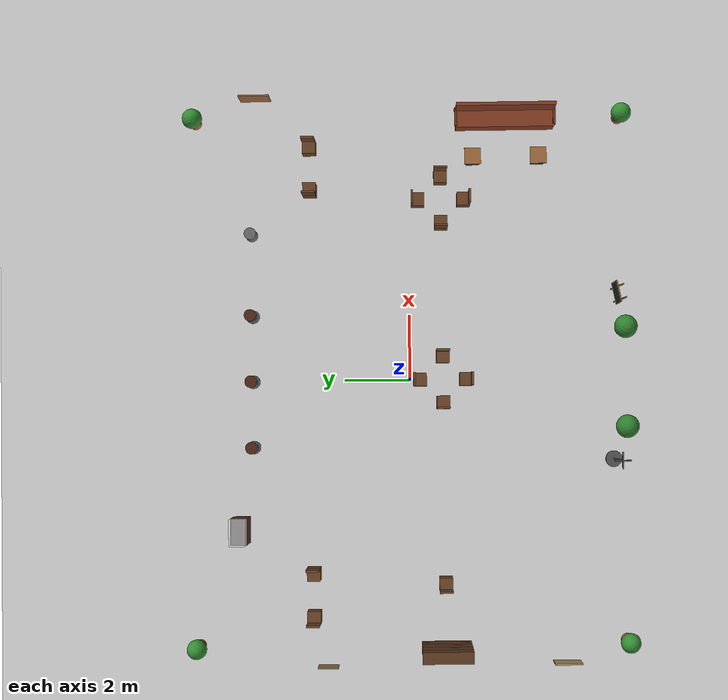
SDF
<sdf version="1.6">
 <world name="cafe_world">
  <include><uri>model://sun</uri></include>
  <include><uri>model://ground_plane</uri></include>
  <model name="chair_3_w">
   <static>true</static>
   <link name="link">
    <pose>-6.2 -1.0 0 0 0 -1.5708</pose>
    <collision name="seat">
     <pose>0 0 0.24 0 0 0</pose>
     <geometry><box><size>0.4 0.4 0.48</size></box></geometry>
    </collision>
    <visual name="seat_v">
     <pose>0 0 0.24 0 0 0</pose>
     <geometry><box><size>0.4 0.4 0.48</size></box></geometry>
     <material><ambient>0.35 0.22 0.12 1</ambient><diffuse>0.4 0.25 0.14 1</diffuse></material>
    </visual>
    <collision name="back">
     <pose>0 -0.17 0.74 0 0 0</pose>
     <geometry><box><size>0.4 0.06 0.54</size></box></geometry>
    </collision>
    <visual name="back_v">
     <pose>0 -0.17 0.74 0 0 0</pose>
     <geometry><box><size>0.4 0.06 0.54</size></box></geometry>
     <material><ambient>0.35 0.22 0.12 1</ambient><diffuse>0.4 0.25 0.14 1</diffuse></material>
    </visual>
   </link>
  </model>
  <model name="chair_4_n">
   <static>true</static>
   <link name="link">
    <pose>0 -0.3 0 0 0 3.1416</pose>
    <collision name="seat">
     <pose>0 0 0.24 0 0 0</pose>
     <geometry><box><size>0.4 0.4 0.48</size></box></geometry>
    </collision>
    <visual name="seat_v">
     <pose>0 0 0.24 0 0 0</pose>
     <geometry><box><size>0.4 0.4 0.48</size></box></geometry>
     <material><ambient>0.35 0.22 0.12 1</ambient><diffuse>0.4 0.25 0.14 1</diffuse></material>
    </visual>
    <collision name="back">
     <pose>0 -0.17 0.74 0 0 0</pose>
     <geometry><box><size>0.4 0.06 0.54</size></box></geometry>
    </collision>
    <visual name="back_v">
     <pose>0 -0.17 0.74 0 0 0</pose>
     <geometry><box><size>0.4 0.06 0.54</size></box></geometry>
     <material><ambient>0.35 0.22 0.12 1</ambient><diffuse>0.4 0.25 0.14 1</diffuse></material>
    </visual>
   </link>
  </model>
  <model name="chair_4_s">
   <static>true</static>
   <link name="link">
    <pose>0 -1.7 0 0 0 0</pose>
    <collision name="seat">
     <pose>0 0 0.24 0 0 0</pose>
     <geometry><box><size>0.4 0.4 0.48</size></box></geometry>
    </collision>
    <visual name="seat_v">
     <pose>0 0 0.24 0 0 0</pose>
     <geometry><box><size>0.4 0.4 0.48</size></box></geometry>
     <material><ambient>0.35 0.22 0.12 1</ambient><diffuse>0.4 0.25 0.14 1</diffuse></material>
    </visual>
    <collision name="back">
     <pose>0 -0.17 0.74 0 0 0</pose>
     <geometry><box><size>0.4 0.06 0.54</size></box></geometry>
    </collision>
    <visual name="back_v">
     <pose>0 -0.17 0.74 0 0 0</pose>
     <geometry><box><size>0.4 0.06 0.54</size></box></geometry>
     <material><ambient>0.35 0.22 0.12 1</ambient><diffuse>0.4 0.25 0.14 1</diffuse></material>
    </visual>
   </link>
  </model>
  <model name="chair_4_e">
   <static>true</static>
   <link name="link">
    <pose>0.7 -1.0 0 0 0 1.5708</pose>
    <collision name="seat">
     <pose>0 0 0.24 0 0 0</pose>
     <geometry><box><size>0.4 0.4 0.48</size></box></geometry>
    </collision>
    <visual name="seat_v">
     <pose>0 0 0.24 0 0 0</pose>
     <geometry><box><size>0.4 0.4 0.48</size></box></geometry>
     <material><ambient>0.35 0.22 0.12 1</ambient><diffuse>0.4 0.25 0.14 1</diffuse></material>
    </visual>
    <collision name="back">
     <pose>0 -0.17 0.74 0 0 0</pose>
     <geometry><box><size>0.4 0.06 0.54</size></box></geometry>
    </collision>
    <visual name="back_v">
     <pose>0 -0.17 0.74 0 0 0</pose>
     <geometry><box><size>0.4 0.06 0.54</size></box></geometry>
     <material><ambient>0.35 0.22 0.12 1</ambient><diffuse>0.4 0.25 0.14 1</diffuse></material>
    </visual>
   </link>
  </model>
  <model name="chair_4_w">
   <static>true</static>
   <link name="link">
    <pose>-0.7 -1.0 0 0 0 -1.5708</pose>
    <collision name="seat">
     <pose>0 0 0.24 0 0 0</pose>
     <geometry><box><size>0.4 0.4 0.48</size></box></geometry>
    </collision>
    <visual name="seat_v">
     <pose>0 0 0.24 0 0 0</pose>
     <geometry><box><size>0.4 0.4 0.48</size></box></geometry>
     <material><ambient>0.35 0.22 0.12 1</ambient><diffuse>0.4 0.25 0.14 1</diffuse></material>
    </visual>
    <collision name="back">
     <pose>0 -0.17 0.74 0 0 0</pose>
     <geometry><box><size>0.4 0.06 0.54</size></box></geometry>
    </collision>
    <visual name="back_v">
     <pose>0 -0.17 0.74 0 0 0</pose>
     <geometry><box><size>0.4 0.06 0.54</size></box></geometry>
     <material><ambient>0.35 0.22 0.12 1</ambient><diffuse>0.4 0.25 0.14 1</diffuse></material>
    </visual>
   </link>
  </model>
  <model name="chair_5_n">
   <static>true</static>
   <link name="link">
    <pose>5.5 -0.3 0 0 0 3.1416</pose>
    <collision name="seat">
     <pose>0 0 0.24 0 0 0</pose>
     <geometry><box><size>0.4 0.4 0.48</size></box></geometry>
    </collision>
    <visual name="seat_v">
     <pose>0 0 0.24 0 0 0</pose>
     <geometry><box><size>0.4 0.4 0.48</size></box></geometry>
     <material><ambient>0.35 0.22 0.12 1</ambient><diffuse>0.4 0.25 0.14 1</diffuse></material>
    </visual>
    <collision name="back">
     <pose>0 -0.17 0.74 0 0 0</pose>
     <geometry><box><size>0.4 0.06 0.54</size></box></geometry>
    </collision>
    <visual name="back_v">
     <pose>0 -0.17 0.74 0 0 0</pose>
     <geometry><box><size>0.4 0.06 0.54</size></box></geometry>
     <material><ambient>0.35 0.22 0.12 1</ambient><diffuse>0.4 0.25 0.14 1</diffuse></material>
    </visual>
   </link>
  </model>
  <model name="chair_5_s">
   <static>true</static>
   <link name="link">
    <pose>5.5 -1.7 0 0 0 0</pose>
    <collision name="seat">
     <pose>0 0 0.24 0 0 0</pose>
     <geometry><box><size>0.4 0.4 0.48</size></box></geometry>
    </collision>
    <visual name="seat_v">
     <pose>0 0 0.24 0 0 0</pose>
     <geometry><box><size>0.4 0.4 0.48</size></box></geometry>
     <material><ambient>0.35 0.22 0.12 1</ambient><diffuse>0.4 0.25 0.14 1</diffuse></material>
    </visual>
    <collision name="back">
     <pose>0 -0.17 0.74 0 0 0</pose>
     <geometry><box><size>0.4 0.06 0.54</size></box></geometry>
    </collision>
    <visual name="back_v">
     <pose>0 -0.17 0.74 0 0 0</pose>
     <geometry><box><size>0.4 0.06 0.54</size></box></geometry>
     <material><ambient>0.35 0.22 0.12 1</ambient><diffuse>0.4 0.25 0.14 1</diffuse></material>
    </visual>
   </link>
  </model>
  <model name="chair_5_e">
   <static>true</static>
   <link name="link">
    <pose>6.2 -1.0 0 0 0 1.5708</pose>
    <collision name="seat">
     <pose>0 0 0.24 0 0 0</pose>
     <geometry><box><size>0.4 0.4 0.48</size></box></geometry>
    </collision>
    <visual name="seat_v">
     <pose>0 0 0.24 0 0 0</pose>
     <geometry><box><size>0.4 0.4 0.48</size></box></geometry>
     <material><ambient>0.35 0.22 0.12 1</ambient><diffuse>0.4 0.25 0.14 1</diffuse></material>
    </visual>
    <collision name="back">
     <pose>0 -0.17 0.74 0 0 0</pose>
     <geometry><box><size>0.4 0.06 0.54</size></box></geometry>
    </collision>
    <visual name="back_v">
     <pose>0 -0.17 0.74 0 0 0</pose>
     <geometry><box><size>0.4 0.06 0.54</size></box></geometry>
     <material><ambient>0.35 0.22 0.12 1</ambient><diffuse>0.4 0.25 0.14 1</diffuse></material>
    </visual>
   </link>
  </model>
  <model name="chair_5_w">
   <static>true</static>
   <link name="link">
    <pose>4.8 -1.0 0 0 0 -1.5708</pose>
    <collision name="seat">
     <pose>0 0 0.24 0 0 0</pose>
     <geometry><box><size>0.4 0.4 0.48</size></box></geometry>
    </collision>
    <visual name="seat_v">
     <pose>0 0 0.24 0 0 0</pose>
     <geometry><box><size>0.4 0.4 0.48</size></box></geometry>
     <material><ambient>0.35 0.22 0.12 1</ambient><diffuse>0.4 0.25 0.14 1</diffuse></material>
    </visual>
    <collision name="back">
     <pose>0 -0.17 0.74 0 0 0</pose>
     <geometry><box><size>0.4 0.06 0.54</size></box></geometry>
    </collision>
    <visual name="back_v">
     <pose>0 -0.17 0.74 0 0 0</pose>
     <geometry><box><size>0.4 0.06 0.54</size></box></geometry>
     <material><ambient>0.35 0.22 0.12 1</ambient><diffuse>0.4 0.25 0.14 1</diffuse></material>
    </visual>
   </link>
  </model>
  <model name="chair_6_e">
   <static>true</static>
   <link name="link">
    <pose>-5.85 3.0 0 0 0 1.5708</pose>
    <collision name="seat">
     <pose>0 0 0.24 0 0 0</pose>
     <geometry><box><size>0.4 0.4 0.48</size></box></geometry>
    </collision>
    <visual name="seat_v">
     <pose>0 0 0.24 0 0 0</pose>
     <geometry><box><size>0.4 0.4 0.48</size></box></geometry>
     <material><ambient>0.35 0.22 0.12 1</ambient><diffuse>0.4 0.25 0.14 1</diffuse></material>
    </visual>
    <collision name="back">
     <pose>0 -0.17 0.74 0 0 0</pose>
     <geometry><box><size>0.4 0.06 0.54</size></box></geometry>
    </collision>
    <visual name="back_v">
     <pose>0 -0.17 0.74 0 0 0</pose>
     <geometry><box><size>0.4 0.06 0.54</size></box></geometry>
     <material><ambient>0.35 0.22 0.12 1</ambient><diffuse>0.4 0.25 0.14 1</diffuse></material>
    </visual>
   </link>
  </model>
  <model name="chair_6_w">
   <static>true</static>
   <link name="link">
    <pose>-7.15 3.0 0 0 0 -1.5708</pose>
    <collision name="seat">
     <pose>0 0 0.24 0 0 0</pose>
     <geometry><box><size>0.4 0.4 0.48</size></box></geometry>
    </collision>
    <visual name="seat_v">
     <pose>0 0 0.24 0 0 0</pose>
     <geometry><box><size>0.4 0.4 0.48</size></box></geometry>
     <material><ambient>0.35 0.22 0.12 1</ambient><diffuse>0.4 0.25 0.14 1</diffuse></material>
    </visual>
    <collision name="back">
     <pose>0 -0.17 0.74 0 0 0</pose>
     <geometry><box><size>0.4 0.06 0.54</size></box></geometry>
    </collision>
    <visual name="back_v">
     <pose>0 -0.17 0.74 0 0 0</pose>
     <geometry><box><size>0.4 0.06 0.54</size></box></geometry>
     <material><ambient>0.35 0.22 0.12 1</ambient><diffuse>0.4 0.25 0.14 1</diffuse></material>
    </visual>
   </link>
  </model>
  <model name="chair_7_e">
   <static>true</static>
   <link name="link">
    <pose>7.15 3.0 0 0 0 1.5708</pose>
    <collision name="seat">
     <pose>0 0 0.24 0 0 0</pose>
     <geometry><box><size>0.4 0.4 0.48</size></box></geometry>
    </collision>
    <visual name="seat_v">
     <pose>0 0 0.24 0 0 0</pose>
     <geometry><box><size>0.4 0.4 0.48</size></box></geometry>
     <material><ambient>0.35 0.22 0.12 1</ambient><diffuse>0.4 0.25 0.14 1</diffuse></material>
    </visual>
    <collision name="back">
     <pose>0 -0.17 0.74 0 0 0</pose>
     <geometry><box><size>0.4 0.06 0.54</size></box></geometry>
    </collision>
    <visual name="back_v">
     <pose>0 -0.17 0.74 0 0 0</pose>
     <geometry><box><size>0.4 0.06 0.54</size></box></geometry>
     <material><ambient>0.35 0.22 0.12 1</ambient><diffuse>0.4 0.25 0.14 1</diffuse></material>
    </visual>
   </link>
  </model>
  <model name="chair_7_w">
   <static>true</static>
   <link name="link">
    <pose>5.85 3.0 0 0 0 -1.5708</pose>
    <collision name="seat">
     <pose>0 0 0.24 0 0 0</pose>
     <geometry><box><size>0.4 0.4 0.48</size></box></geometry>
    </collision>
    <visual name="seat_v">
     <pose>0 0 0.24 0 0 0</pose>
     <geometry><box><size>0.4 0.4 0.48</size></box></geometry>
     <material><ambient>0.35 0.22 0.12 1</ambient><diffuse>0.4 0.25 0.14 1</diffuse></material>
    </visual>
    <collision name="back">
     <pose>0 -0.17 0.74 0 0 0</pose>
     <geometry><box><size>0.4 0.06 0.54</size></box></geometry>
    </collision>
    <visual name="back_v">
     <pose>0 -0.17 0.74 0 0 0</pose>
     <geometry><box><size>0.4 0.06 0.54</size></box></geometry>
     <material><ambient>0.35 0.22 0.12 1</ambient><diffuse>0.4 0.25 0.14 1</diffuse></material>
    </visual>
   </link>
  </model>
  <model name="stool_0">
   <static>true</static>
   <link name="link">
    <pose>-2 4.8 0 0 0 0</pose>
    <collision name="seat">
     <pose>0 0 0.75 0 0 0</pose>
     <geometry><cylinder><radius>0.18</radius><length>0.06</length></cylinder></geometry>
    </collision>
    <visual name="seat_v">
     <pose>0 0 0.75 0 0 0</pose>
     <geometry><cylinder><radius>0.18</radius><length>0.06</length></cylinder></geometry>
     <material><ambient>0.25 0.12 0.06 1</ambient><diffuse>0.3 0.15 0.08 1</diffuse></material>
    </visual>
    <collision name="leg">
     <pose>0 0 0.36 0 0 0</pose>
     <geometry><cylinder><radius>0.03</radius><length>0.72</length></cylinder></geometry>
    </collision>
    <visual name="leg_v">
     <pose>0 0 0.36 0 0 0</pose>
     <geometry><cylinder><radius>0.03</radius><length>0.72</length></cylinder></geometry>
     <material><ambient>0.3 0.3 0.3 1</ambient></material>
    </visual>
    <collision name="foot">
     <pose>0 0 0.3 0 0 0</pose>
     <geometry><cylinder><radius>0.15</radius><length>0.03</length></cylinder></geometry>
    </collision>
    <visual name="foot_v">
     <pose>0 0 0.3 0 0 0</pose>
     <geometry><cylinder><radius>0.15</radius><length>0.03</length></cylinder></geometry>
     <material><ambient>0.3 0.3 0.3 1</ambient></material>
    </visual>
    <collision name="base">
     <pose>0 0 0.02 0 0 0</pose>
     <geometry><cylinder><radius>0.2</radius><length>0.04</length></cylinder></geometry>
    </collision>
    <visual name="base_v">
     <pose>0 0 0.02 0 0 0</pose>
     <geometry><cylinder><radius>0.2</radius><length>0.04</length></cylinder></geometry>
     <material><ambient>0.3 0.3 0.3 1</ambient></material>
    </visual>
   </link>
  </model>
  <model name="stool_1">
   <static>true</static>
   <link name="link">
    <pose>0 4.8 0 0 0 0</pose>
    <collision name="seat">
     <pose>0 0 0.75 0 0 0</pose>
     <geometry><cylinder><radius>0.18</radius><length>0.06</length></cylinder></geometry>
    </collision>
    <visual name="seat_v">
     <pose>0 0 0.75 0 0 0</pose>
     <geometry><cylinder><radius>0.18</radius><length>0.06</length></cylinder></geometry>
     <material><ambient>0.25 0.12 0.06 1</ambient><diffuse>0.3 0.15 0.08 1</diffuse></material>
    </visual>
    <collision name="leg">
     <pose>0 0 0.36 0 0 0</pose>
     <geometry><cylinder><radius>0.03</radius><length>0.72</length></cylinder></geometry>
    </collision>
    <visual name="leg_v">
     <pose>0 0 0.36 0 0 0</pose>
     <geometry><cylinder><radius>0.03</radius><length>0.72</length></cylinder></geometry>
     <material><ambient>0.3 0.3 0.3 1</ambient></material>
    </visual>
    <collision name="foot">
     <pose>0 0 0.3 0 0 0</pose>
     <geometry><cylinder><radius>0.15</radius><length>0.03</length></cylinder></geometry>
    </collision>
    <visual name="foot_v">
     <pose>0 0 0.3 0 0 0</pose>
     <geometry><cylinder><radius>0.15</radius><length>0.03</length></cylinder></geometry>
     <material><ambient>0.3 0.3 0.3 1</ambient></material>
    </visual>
    <collision name="base">
     <pose>0 0 0.02 0 0 0</pose>
     <geometry><cylinder><radius>0.2</radius><length>0.04</length></cylinder></geometry>
    </collision>
    <visual name="base_v">
     <pose>0 0 0.02 0 0 0</pose>
     <geometry><cylinder><radius>0.2</radius><length>0.04</length></cylinder></geometry>
     <material><ambient>0.3 0.3 0.3 1</ambient></material>
    </visual>
   </link>
  </model>
  <model name="stool_2">
   <static>true</static>
   <link name="link">
    <pose>2 4.8 0 0 0 0</pose>
    <collision name="seat">
     <pose>0 0 0.75 0 0 0</pose>
     <geometry><cylinder><radius>0.18</radius><length>0.06</length></cylinder></geometry>
    </collision>
    <visual name="seat_v">
     <pose>0 0 0.75 0 0 0</pose>
     <geometry><cylinder><radius>0.18</radius><length>0.06</length></cylinder></geometry>
     <material><ambient>0.25 0.12 0.06 1</ambient><diffuse>0.3 0.15 0.08 1</diffuse></material>
    </visual>
    <collision name="leg">
     <pose>0 0 0.36 0 0 0</pose>
     <geometry><cylinder><radius>0.03</radius><length>0.72</length></cylinder></geometry>
    </collision>
    <visual name="leg_v">
     <pose>0 0 0.36 0 0 0</pose>
     <geometry><cylinder><radius>0.03</radius><length>0.72</length></cylinder></geometry>
     <material><ambient>0.3 0.3 0.3 1</ambient></material>
    </visual>
    <collision name="foot">
     <pose>0 0 0.3 0 0 0</pose>
     <geometry><cylinder><radius>0.15</radius><length>0.03</length></cylinder></geometry>
    </collision>
    <visual name="foot_v">
     <pose>0 0 0.3 0 0 0</pose>
     <geometry><cylinder><radius>0.15</radius><length>0.03</length></cylinder></geometry>
     <material><ambient>0.3 0.3 0.3 1</ambient></material>
    </visual>
    <collision name="base">
     <pose>0 0 0.02 0 0 0</pose>
     <geometry><cylinder><radius>0.2</radius><length>0.04</length></cylinder></geometry>
    </collision>
    <visual name="base_v">
     <pose>0 0 0.02 0 0 0</pose>
     <geometry><cylinder><radius>0.2</radius><length>0.04</length></cylinder></geometry>
     <material><ambient>0.3 0.3 0.3 1</ambient></material>
    </visual>
   </link>
  </model>
  <model name="plant_0">
   <static>true</static>
   <link name="link">
    <pose>-8 -6.5 0 0 0 0</pose>
    <collision name="pot">
     <pose>0 0 0.2 0 0 0</pose>
     <geometry><cylinder><radius>0.18</radius><length>0.4</length></cylinder></geometry>
    </collision>
    <visual name="pot_v">
     <pose>0 0 0.2 0 0 0</pose>
     <geometry><cylinder><radius>0.18</radius><length>0.4</length></cylinder></geometry>
     <material><ambient>0.7 0.35 0.18 1</ambient><diffuse>0.75 0.4 0.2 1</diffuse></material>
    </visual>
    <collision name="foliage">
     <pose>0 0 0.7 0 0 0</pose>
     <geometry><sphere><radius>0.3</radius></sphere></geometry>
    </collision>
    <visual name="foliage_v">
     <pose>0 0 0.7 0 0 0</pose>
     <geometry><sphere><radius>0.3</radius></sphere></geometry>
     <material><ambient>0.15 0.5 0.15 1</ambient><diffuse>0.2 0.55 0.2 1</diffuse></material>
    </visual>
   </link>
  </model>
  <model name="plant_1">
   <static>true</static>
   <link name="link">
    <pose>8 -6.5 0 0 0 0</pose>
    <collision name="pot">
     <pose>0 0 0.2 0 0 0</pose>
     <geometry><cylinder><radius>0.18</radius><length>0.4</length></cylinder></geometry>
    </collision>
    <visual name="pot_v">
     <pose>0 0 0.2 0 0 0</pose>
     <geometry><cylinder><radius>0.18</radius><length>0.4</length></cylinder></geometry>
     <material><ambient>0.7 0.35 0.18 1</ambient><diffuse>0.75 0.4 0.2 1</diffuse></material>
    </visual>
    <collision name="foliage">
     <pose>0 0 0.7 0 0 0</pose>
     <geometry><sphere><radius>0.3</radius></sphere></geometry>
    </collision>
    <visual name="foliage_v">
     <pose>0 0 0.7 0 0 0</pose>
     <geometry><sphere><radius>0.3</radius></sphere></geometry>
     <material><ambient>0.15 0.5 0.15 1</ambient><diffuse>0.2 0.55 0.2 1</diffuse></material>
    </visual>
   </link>
  </model>
  <model name="plant_2">
   <static>true</static>
   <link name="link">
    <pose>-8 6.5 0 0 0 0</pose>
    <collision name="pot">
     <pose>0 0 0.2 0 0 0</pose>
     <geometry><cylinder><radius>0.18</radius><length>0.4</length></cylinder></geometry>
    </collision>
    <visual name="pot_v">
     <pose>0 0 0.2 0 0 0</pose>
     <geometry><cylinder><radius>0.18</radius><length>0.4</length></cylinder></geometry>
     <material><ambient>0.7 0.35 0.18 1</ambient><diffuse>0.75 0.4 0.2 1</diffuse></material>
    </visual>
    <collision name="foliage">
     <pose>0 0 0.7 0 0 0</pose>
     <geometry><sphere><radius>0.3</radius></sphere></geometry>
    </collision>
    <visual name="foliage_v">
     <pose>0 0 0.7 0 0 0</pose>
     <geometry><sphere><radius>0.3</radius></sphere></geometry>
     <material><ambient>0.15 0.5 0.15 1</ambient><diffuse>0.2 0.55 0.2 1</diffuse></material>
    </visual>
   </link>
  </model>
  <model name="plant_3">
   <static>true</static>
   <link name="link">
    <pose>8 6.5 0 0 0 0</pose>
    <collision name="pot">
     <pose>0 0 0.2 0 0 0</pose>
     <geometry><cylinder><radius>0.18</radius><length>0.4</length></cylinder></geometry>
    </collision>
    <visual name="pot_v">
     <pose>0 0 0.2 0 0 0</pose>
     <geometry><cylinder><radius>0.18</radius><length>0.4</length></cylinder></geometry>
     <material><ambient>0.7 0.35 0.18 1</ambient><diffuse>0.75 0.4 0.2 1</diffuse></material>
    </visual>
    <collision name="foliage">
     <pose>0 0 0.7 0 0 0</pose>
     <geometry><sphere><radius>0.3</radius></sphere></geometry>
    </collision>
    <visual name="foliage_v">
     <pose>0 0 0.7 0 0 0</pose>
     <geometry><sphere><radius>0.3</radius></sphere></geometry>
     <material><ambient>0.15 0.5 0.15 1</ambient><diffuse>0.2 0.55 0.2 1</diffuse></material>
    </visual>
   </link>
  </model>
  <model name="plant_4">
   <static>true</static>
   <link name="link">
    <pose>-1.5 -6.5 0 0 0 0</pose>
    <collision name="pot">
     <pose>0 0 0.25 0 0 0</pose>
     <geometry><cylinder><radius>0.2</radius><length>0.5</length></cylinder></geometry>
    </collision>
    <visual name="pot_v">
     <pose>0 0 0.25 0 0 0</pose>
     <geometry><cylinder><radius>0.2</radius><length>0.5</length></cylinder></geometry>
     <material><ambient>0.55 0.55 0.52 1</ambient><diffuse>0.6 0.6 0.58 1</diffuse></material>
    </visual>
    <collision name="foliage">
     <pose>0 0 0.85 0 0 0</pose>
     <geometry><sphere><radius>0.35</radius></sphere></geometry>
    </collision>
    <visual name="foliage_v">
     <pose>0 0 0.85 0 0 0</pose>
     <geometry><sphere><radius>0.35</radius></sphere></geometry>
     <material><ambient>0.12 0.45 0.12 1</ambient><diffuse>0.18 0.5 0.18 1</diffuse></material>
    </visual>
   </link>
  </model>
  <model name="plant_5">
   <static>true</static>
   <link name="link">
    <pose>1.5 -6.5 0 0 0 0</pose>
    <collision name="pot">
     <pose>0 0 0.25 0 0 0</pose>
     <geometry><cylinder><radius>0.2</radius><length>0.5</length></cylinder></geometry>
    </collision>
    <visual name="pot_v">
     <pose>0 0 0.25 0 0 0</pose>
     <geometry><cylinder><radius>0.2</radius><length>0.5</length></cylinder></geometry>
     <material><ambient>0.55 0.55 0.52 1</ambient><diffuse>0.6 0.6 0.58 1</diffuse></material>
    </visual>
    <collision name="foliage">
     <pose>0 0 0.85 0 0 0</pose>
     <geometry><sphere><radius>0.35</radius></sphere></geometry>
    </collision>
    <visual name="foliage_v">
     <pose>0 0 0.85 0 0 0</pose>
     <geometry><sphere><radius>0.35</radius></sphere></geometry>
     <material><ambient>0.12 0.45 0.12 1</ambient><diffuse>0.18 0.5 0.18 1</diffuse></material>
    </visual>
   </link>
  </model>
  <model name="display_case">
   <static>true</static>
   <link name="link">
    <pose>-4.5 5.2 0 0 0 0</pose>
    <collision name="base">
     <pose>0 0 0.4 0 0 0</pose>
     <geometry><box><size>0.8 0.5 0.8</size></box></geometry>
    </collision>
    <visual name="base_v">
     <pose>0 0 0.4 0 0 0</pose>
     <geometry><box><size>0.8 0.5 0.8</size></box></geometry>
     <material><ambient>0.25 0.15 0.08 1</ambient><diffuse>0.3 0.18 0.1 1</diffuse></material>
    </visual>
    <collision name="glass">
     <pose>0 0 1.0 0 0 0</pose>
     <geometry><box><size>0.8 0.5 0.4</size></box></geometry>
    </collision>
    <visual name="glass_v">
     <pose>0 0 1.0 0 0 0</pose>
     <geometry><box><size>0.8 0.5 0.4</size></box></geometry>
     <material><ambient>0.7 0.75 0.8 0.6</ambient><diffuse>0.8 0.85 0.9 0.6</diffuse></material>
    </visual>
   </link>
  </model>
  <model name="bookshelf">
   <static>true</static>
   <link name="link">
    <pose>-8.15 -1.0 0 0 0 0</pose>
    <collision name="body">
     <pose>0 0 0.9 0 0 0</pose>
     <geometry><box><size>0.35 1.5 1.8</size></box></geometry>
    </collision>
    <visual name="body_v">
     <pose>0 0 0.9 0 0 0</pose>
     <geometry><box><size>0.35 1.5 1.8</size></box></geometry>
     <material><ambient>0.3 0.18 0.1 1</ambient><diffuse>0.35 0.22 0.12 1</diffuse></material>
    </visual>
    <collision name="s1">
     <pose>0.02 0 0.45 0 0 0</pose>
     <geometry><box><size>0.38 1.48 0.02</size></box></geometry>
    </collision>
    <visual name="s1_v">
     <pose>0.02 0 0.45 0 0 0</pose>
     <geometry><box><size>0.38 1.48 0.02</size></box></geometry>
     <material><ambient>0.4 0.25 0.14 1</ambient></material>
    </visual>
    <collision name="s2">
     <pose>0.02 0 0.9 0 0 0</pose>
     <geometry><box><size>0.38 1.48 0.02</size></box></geometry>
    </collision>
    <visual name="s2_v">
     <pose>0.02 0 0.9 0 0 0</pose>
     <geometry><box><size>0.38 1.48 0.02</size></box></geometry>
     <material><ambient>0.4 0.25 0.14 1</ambient></material>
    </visual>
    <collision name="s3">
     <pose>0.02 0 1.35 0 0 0</pose>
     <geometry><box><size>0.38 1.48 0.02</size></box></geometry>
    </collision>
    <visual name="s3_v">
     <pose>0.02 0 1.35 0 0 0</pose>
     <geometry><box><size>0.38 1.48 0.02</size></box></geometry>
     <material><ambient>0.4 0.25 0.14 1</ambient></material>
    </visual>
   </link>
  </model>
  <model name="menu_board">
   <static>true</static>
   <link name="link">
    <pose>2.5 -6.2 0 0 0 0.2</pose>
    <collision name="board">
     <pose>0 0 1.1 0 0 0</pose>
     <geometry><box><size>0.6 0.05 0.8</size></box></geometry>
    </collision>
    <visual name="board_v">
     <pose>0 0 1.1 0 0 0</pose>
     <geometry><box><size>0.6 0.05 0.8</size></box></geometry>
     <material><ambient>0.1 0.15 0.1 1</ambient><diffuse>0.12 0.18 0.12 1</diffuse></material>
    </visual>
    <collision name="frame">
     <pose>0 0 1.1 0 0 0</pose>
     <geometry><box><size>0.65 0.04 0.85</size></box></geometry>
    </collision>
    <visual name="frame_v">
     <pose>0 0 1.1 0 0 0</pose>
     <geometry><box><size>0.65 0.04 0.85</size></box></geometry>
     <material><ambient>0.55 0.36 0.2 1</ambient></material>
    </visual>
    <collision name="leg_l">
     <pose>-0.2 -0.15 0.55 0.15 0 0</pose>
     <geometry><box><size>0.04 0.04 1.2</size></box></geometry>
    </collision>
    <visual name="leg_l_v">
     <pose>-0.2 -0.15 0.55 0.15 0 0</pose>
     <geometry><box><size>0.04 0.04 1.2</size></box></geometry>
     <material><ambient>0.55 0.36 0.2 1</ambient></material>
    </visual>
    <collision name="leg_r">
     <pose>0.2 -0.15 0.55 0.15 0 0</pose>
     <geometry><box><size>0.04 0.04 1.2</size></box></geometry>
    </collision>
    <visual name="leg_r_v">
     <pose>0.2 -0.15 0.55 0.15 0 0</pose>
     <geometry><box><size>0.04 0.04 1.2</size></box></geometry>
     <material><ambient>0.55 0.36 0.2 1</ambient></material>
    </visual>
   </link>
  </model>
  <model name="coat_rack">
   <static>true</static>
   <link name="link">
    <pose>-2.5 -6.2 0 0 0 0</pose>
    <collision name="pole">
     <pose>0 0 0.85 0 0 0</pose>
     <geometry><cylinder><radius>0.03</radius><length>1.7</length></cylinder></geometry>
    </collision>
    <visual name="pole_v">
     <pose>0 0 0.85 0 0 0</pose>
     <geometry><cylinder><radius>0.03</radius><length>1.7</length></cylinder></geometry>
     <material><ambient>0.3 0.3 0.3 1</ambient></material>
    </visual>
    <collision name="base">
     <pose>0 0 0.03 0 0 0</pose>
     <geometry><cylinder><radius>0.25</radius><length>0.06</length></cylinder></geometry>
    </collision>
    <visual name="base_v">
     <pose>0 0 0.03 0 0 0</pose>
     <geometry><cylinder><radius>0.25</radius><length>0.06</length></cylinder></geometry>
     <material><ambient>0.3 0.3 0.3 1</ambient></material>
    </visual>
    <collision name="hook1">
     <pose>0 0 1.65 0 0 0</pose>
     <geometry><box><size>0.5 0.04 0.04</size></box></geometry>
    </collision>
    <visual name="hook1_v">
     <pose>0 0 1.65 0 0 0</pose>
     <geometry><box><size>0.5 0.04 0.04</size></box></geometry>
     <material><ambient>0.3 0.3 0.3 1</ambient></material>
    </visual>
    <collision name="hook2">
     <pose>0 0 1.65 0 0 1.5708</pose>
     <geometry><box><size>0.5 0.04 0.04</size></box></geometry>
    </collision>
    <visual name="hook2_v">
     <pose>0 0 1.65 0 0 1.5708</pose>
     <geometry><box><size>0.5 0.04 0.04</size></box></geometry>
     <material><ambient>0.3 0.3 0.3 1</ambient></material>
    </visual>
   </link>
  </model>
  <model name="trash_bin">
   <static>true</static>
   <link name="link">
    <pose>4.5 4.8 0 0 0 0</pose>
    <collision name="c">
     <pose>0 0 0.3 0 0 0</pose>
     <geometry><cylinder><radius>0.18</radius><length>0.6</length></cylinder></geometry>
    </collision>
    <visual name="v">
     <pose>0 0 0.3 0 0 0</pose>
     <geometry><cylinder><radius>0.18</radius><length>0.6</length></cylinder></geometry>
     <material><ambient>0.35 0.35 0.35 1</ambient><diffuse>0.4 0.4 0.4 1</diffuse></material>
    </visual>
   </link>
  </model>
  <model name="sofa_east">
   <static>true</static>
   <link name="link">
    <pose>8 -3.0 0 0 0 0</pose>
    <collision name="seat">
     <pose>-0.05 0 0.25 0 0 0</pose>
     <geometry><box><size>0.55 3.0 0.5</size></box></geometry>
    </collision>
    <visual name="seat_v">
     <pose>-0.05 0 0.25 0 0 0</pose>
     <geometry><box><size>0.55 3.0 0.5</size></box></geometry>
     <material><ambient>0.45 0.2 0.1 1</ambient><diffuse>0.5 0.22 0.12 1</diffuse></material>
    </visual>
    <collision name="back">
     <pose>0.22 0 0.7 0 0 0</pose>
     <geometry><box><size>0.1 3.0 0.9</size></box></geometry>
    </collision>
    <visual name="back_v">
     <pose>0.22 0 0.7 0 0 0</pose>
     <geometry><box><size>0.1 3.0 0.9</size></box></geometry>
     <material><ambient>0.45 0.2 0.1 1</ambient><diffuse>0.5 0.22 0.12 1</diffuse></material>
    </visual>
    <collision name="arm_l">
     <pose>0 -1.5 0.45 0 0 0</pose>
     <geometry><box><size>0.55 0.08 0.15</size></box></geometry>
    </collision>
    <visual name="arm_l_v">
     <pose>0 -1.5 0.45 0 0 0</pose>
     <geometry><box><size>0.55 0.08 0.15</size></box></geometry>
     <material><ambient>0.4 0.18 0.09 1</ambient></material>
    </visual>
    <collision name="arm_r">
     <pose>0 1.5 0.45 0 0 0</pose>
     <geometry><box><size>0.55 0.08 0.15</size></box></geometry>
    </collision>
    <visual name="arm_r_v">
     <pose>0 1.5 0.45 0 0 0</pose>
     <geometry><box><size>0.55 0.08 0.15</size></box></geometry>
     <material><ambient>0.4 0.18 0.09 1</ambient></material>
    </visual>
   </link>
  </model>
  <model name="coffee_table_0">
   <static>true</static>
   <link name="link">
    <pose>6.8 -2.0 0 0 0 0</pose>
    <collision name="top">
     <pose>0 0 0.43 0 0 0</pose>
     <geometry><box><size>0.5 0.5 0.05</size></box></geometry>
    </collision>
    <visual name="top_v">
     <pose>0 0 0.43 0 0 0</pose>
     <geometry><box><size>0.5 0.5 0.05</size></box></geometry>
     <material><ambient>0.55 0.36 0.2 1</ambient><diffuse>0.6 0.4 0.22 1</diffuse></material>
    </visual>
    <collision name="leg">
     <pose>0 0 0.2 0 0 0</pose>
     <geometry><box><size>0.4 0.4 0.4</size></box></geometry>
    </collision>
    <visual name="leg_v">
     <pose>0 0 0.2 0 0 0</pose>
     <geometry><box><size>0.4 0.4 0.4</size></box></geometry>
     <material><ambient>0.3 0.3 0.3 1</ambient></material>
    </visual>
   </link>
  </model>
  <model name="coffee_table_1">
   <static>true</static>
   <link name="link">
    <pose>6.8 -4.0 0 0 0 0</pose>
    <collision name="top">
     <pose>0 0 0.43 0 0 0</pose>
     <geometry><box><size>0.5 0.5 0.05</size></box></geometry>
    </collision>
    <visual name="top_v">
     <pose>0 0 0.43 0 0 0</pose>
     <geometry><box><size>0.5 0.5 0.05</size></box></geometry>
     <material><ambient>0.55 0.36 0.2 1</ambient><diffuse>0.6 0.4 0.22 1</diffuse></material>
    </visual>
    <collision name="leg">
     <pose>0 0 0.2 0 0 0</pose>
     <geometry><box><size>0.4 0.4 0.4</size></box></geometry>
    </collision>
    <visual name="leg_v">
     <pose>0 0 0.2 0 0 0</pose>
     <geometry><box><size>0.4 0.4 0.4</size></box></geometry>
     <material><ambient>0.3 0.3 0.3 1</ambient></material>
    </visual>
   </link>
  </model>
  <model name="wall_art_west_1">
   <static>true</static>
   <link name="link">
    <pose>-8.38 -4.5 1.5 0 0 0</pose>
    <collision name="c"><geometry><box><size>0.04 0.8 0.6</size></box></geometry></collision>
    <visual name="v">
     <geometry><box><size>0.04 0.8 0.6</size></box></geometry>
     <material><ambient>0.6 0.5 0.3 1</ambient><diffuse>0.65 0.55 0.35 1</diffuse></material>
    </visual>
   </link>
  </model>
  <model name="wall_art_west_2">
   <static>true</static>
   <link name="link">
    <pose>-8.38 2.5 1.6 0 0 0</pose>
    <collision name="c"><geometry><box><size>0.04 0.6 0.5</size></box></geometry></collision>
    <visual name="v">
     <geometry><box><size>0.04 0.6 0.5</size></box></geometry>
     <material><ambient>0.5 0.4 0.25 1</ambient><diffuse>0.55 0.45 0.3 1</diffuse></material>
    </visual>
   </link>
  </model>
  <model name="wall_art_east_1">
   <static>true</static>
   <link name="link">
    <pose>8.38 4.5 1.5 0 0 0</pose>
    <collision name="c"><geometry><box><size>0.04 0.9 0.7</size></box></geometry></collision>
    <visual name="v">
     <geometry><box><size>0.04 0.9 0.7</size></box></geometry>
     <material><ambient>0.55 0.35 0.2 1</ambient><diffuse>0.6 0.4 0.25 1</diffuse></material>
    </visual>
   </link>
  </model>
 </world>
</sdf>
